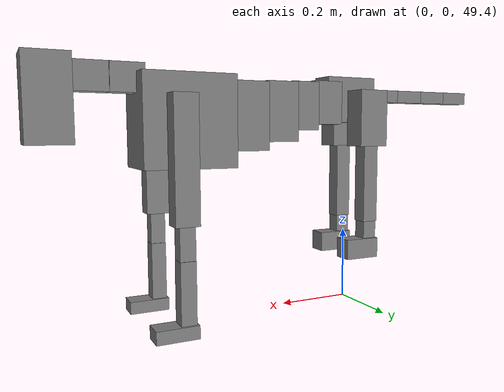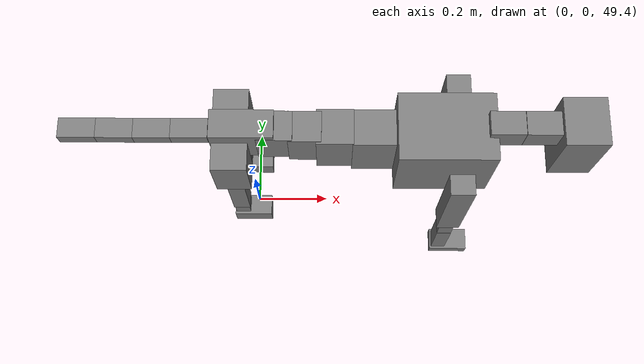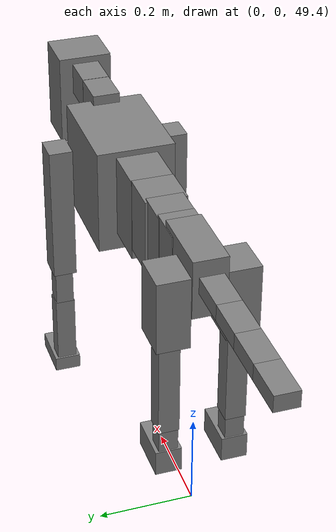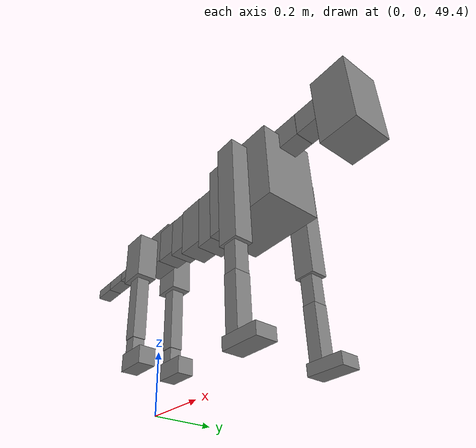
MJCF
<mujoco model="dog">

    <default>
        <joint armature="0.02" stiffness="1" damping="0.2" limited="true"/>
        <geom condim="3" friction="1 0.05 0.05" margin="0.01"/>
        <motor ctrllimited="true" ctrlrange="-1.0 1.0" forcelimited="true" gear="50"/>
    </default>

    <compiler inertiafromgeom="true" angle="radian"/>

    <option timestep="0.016" iterations="50" tolerance="1e-10" solver="Newton" jacobian="dense" cone="pyramidal"/>

    <size nconmax="20000" njmax="60000" nstack="5000000"/>
    <visual>
        <map force="0.1" zfar="30"/>
        <rgba haze="0.15 0.25 0.35 1"/>
        <quality shadowsize="2048"/>
        <global offwidth="800" offheight="800"/>
    </visual>

    <asset>
        <texture type="skybox" builtin="gradient" rgb1="0.3 0.5 0.7" rgb2="0 0 0" width="512" height="512"/>
        <texture name="texplane" type="2d" builtin="checker" rgb1=".2 .3 .4" rgb2=".1 0.15 0.2" width="512" height="512"
                 mark="cross" markrgb=".8 .8 .8"/>
        <texture name="texgeom" type="cube" builtin="flat" mark="cross" width="127" height="1278" rgb1="0.8 0.6 0.4"
                 rgb2="0.8 0.6 0.4" markrgb="1 1 1" random="0.01"/>

        <material name="matplane" reflectance="0.3" texture="texplane" texrepeat="1 1" texuniform="true"/>
        <material name="matgeom" texture="texgeom" texuniform="true" rgba="0.8 0.6 .4 1"/>
    </asset>

    <worldbody>
        <geom name="floor" pos="0 0 0" size="0 0 .25" type="plane" material="matplane" condim="3"/>

        <light directional="false" diffuse=".2 .2 .2" specular="0 0 0" pos="0 0 5" dir="0 0 -1" castshadow="false"/>
        <light mode="targetbodycom" target="torso" directional="false" diffuse=".8 .8 .8" specular="0.3 0.3 0.3"
               pos="0 0 4.0" dir="0 0 -1"/>

        <body name="root" pos="0 0 50">
            <freejoint name="root_1"/>
            <geom type="box" pos="0 0 -0.02" size="0.0774  0.0358  0.063" density="2030"/>

            <body name="spine1" pos="0.054 0 0">
                <joint name="spine1_y" axis="0 1 0" range="0 0.7" limited="true"/>
                <geom type="box" pos="0.02375 0 -0.03" size="0.04375  0.0375  0.05985" density="2030"/>

                <body name="spine2" pos="0.0612 0 0">
                    <joint name="spine2_y" axis="0 1 0" range="-0.15 0.15" limited="true"/>
                    <geom type="box" pos="0.03555  0  -0.04" size="0.04055  0.039  0.06615" density="2030"/>

                    <body name="spine3" pos="0.0730 0 0">
                        <joint name="spine3_y" axis="0 1 0" range="-0.15 0.15" limited="true"/>
                        <geom type="box" pos="0.03555  0  -0.057" size="0.04555  0.0445  0.081" density="2030"/>

                        <body name="spine4" pos="0.0780 0 0">
                            <joint name="spine4_y" axis="0 1 0" range="-0.15 0.15" limited="true"/>
                            <geom type="box" pos="0.05265  0  -0.07" size="0.05265  0.045  0.09135" density="2030"/>

                            <body name="torso" pos="0.1082 0 0">
                                <joint name="torso_y" axis="0 1 0" range="-0.15 0.15" limited="true"/>
                                <geom type="box" pos="0.11925  0  -0.085" size="0.11925  0.085  0.11745"
                                      density="2030"/>

                                <body name="neck1" pos="0.2160  0   0.0180">
                                    <joint name="neck1_y" axis="0 1 0" range="-1.2  -1" limited="true"/>
                                    <geom type="box" pos="0.0423  0  0" size="0.0423  0.03  0.036" density="2325"/>

                                    <body name="neck2" pos="0.0853  0  0">
                                        <joint name="neck2_y" axis="0 1 0" range="0.1  0" limited="true"/>
                                        <geom type="box" pos="0.0423  0  0" size="0.0423  0.03  0.036" density="2325"/>

                                        <body name="head" pos="0.0853  0  0">
                                            <joint name="head_y" axis="0 1 0" range="-0.3  -0.2" limited="true"/>
                                            <geom type="box" pos="0.0531  0  -0.055" size="0.0531  0.06  0.1044"
                                                  density="4030"/>

                                        </body>
                                    </body>
                                </body>

                                <body name="front_shoulder" pos="0.156  0   -0.0480">
                                    <joint name="front_shoulder_y" axis="0 1 0" range="-1 1.5" limited="true"/>
                                    <geom type="box" pos="0 0.13 -0.1290" size="0.0303  0.0259  0.1556" density="1158"/>
                                    <geom type="box" pos="0 -0.13 -0.1290" size="0.0303  0.0259  0.1556"
                                          density="1158"/>

                                    <body name="front_elbow" pos="0  0  -0.2579">
                                        <joint name="front_elbow_y" axis="0 1 0" range="-2 0" limited="true"/>
                                        <geom type="box" pos="0 0.13 -0.0609" size="0.0195  0.0199  0.0609"
                                              density="1081"/>
                                        <geom type="box" pos="0 -0.13 -0.0609" size="0.0195  0.0199  0.0609"
                                              density="1081"/>

                                        <body name="front_wrist" pos="0  0  -0.1219">
                                            <joint name="front_wrist_y" axis="0 1 0" range="-0.2 0" limited="true"/>
                                            <geom type="box" pos="0 0.13 -0.0784" size="0.0196  0.0218  0.0915"
                                                  density="1664"/>
                                            <geom type="box" pos="0 -0.13 -0.0784" size="0.0196  0.0218  0.0915"
                                                  density="1664"/>

                                            <body name="front_finger_end" pos="0  0  -0.1567">
                                                <joint name="front_finger_y" axis="0 1 0" range="-0.4 1"
                                                       limited="true"/>
                                                <geom type="box" pos="0.0290  0.13  -0.0016"
                                                      size="0.0532  0.0290  0.0166" density="1515"/>
                                                <geom type="box" pos="0.0290  -0.13  -0.0016"
                                                      size="0.0532  0.0290  0.0166" density="1515"/>

                                            </body>

                                        </body>
                                    </body>
                                </body>

                            </body>
                        </body>
                    </body>
                </body>
            </body>

            <body name="back_hip" pos="-0.03 0 -0.018">
                <joint name="back_hip_y" axis="0 1 0" range="-1.5 0.3" limited="true"/>
                <geom type="box" pos="0 0.07 -0.0553" size="0.0436  0.0342  0.0781" density="1154"/>
                <geom type="box" pos="0 -0.07 -0.0553" size="0.0436  0.0342  0.0781" density="1154"/>

                <body name="back_knee" pos="0  0  -0.1107">
                    <joint name="back_knee_y" axis="0 1 0" range="0 2.8" limited="true"/>
                    <geom type="box" pos="0 0.07 -0.1105" size="0.0222  0.0218  0.1261" density="1227"/>
                    <geom type="box" pos="0 -0.07 -0.1105" size="0.0222  0.0218  0.1261" density="1227"/>

                    <body name="back_ankle" pos="0  0  -0.2211">
                        <joint name="back_ankle_y" axis="0 1 0" range="-2.2 0" limited="true"/>
                        <geom type="box" pos="0 0.07 -0.0395" size="0.0200  0.0200  0.0507" density="1284"/>
                        <geom type="box" pos="0 -0.07 -0.0395" size="0.0200  0.0200  0.0507" density="1284"/>

                        <body name="back_toe_end" pos="0  0  -0.0789">
                            <joint name="back_toe_y" axis="0 1 0" range="-0.4 1" limited="true"/>
                            <geom type="box" pos="0.0275  0.07  -0.0128" size="0.0505  0.0275  0.0278" density="1515"/>
                            <geom type="box" pos="0.0275  -0.07  -0.0128" size="0.0505  0.0275  0.0278" density="1515"/>

                        </body>
                    </body>
                </body>
            </body>

            <body name="tail1" pos="-0.074 0 -0.006">
                <joint name="tail1_y" axis="0 1 0" range="-0.2 0.2" limited="true"/>
                <geom type="box" pos="-0.0536  0  0" size="0.045  0.025  0.0175" density="1587"/>

                <body name="tail2" pos="-0.09 0 0">
                    <joint name="tail2_y" axis="0 1 0" range="-0.2 0.2" limited="true"/>
                    <geom type="box" pos="-0.0536  0  0" size="0.045  0.025  0.0175" density="1587"/>

                    <body name="tail3" pos="-0.09 0 0">
                        <joint name="tail3_y" axis="0 1 0" range="-0.2 0.2" limited="true"/>
                        <geom type="box" pos="-0.0536  0  0" size="0.045  0.025  0.0175" density="1587"/>

                        <body name="tail4" pos="-0.09 0 0">
                            <joint name="tail4_y" axis="0 1 0" range="-0.2 0.2" limited="true"/>
                            <geom type="box" pos="-0.0536  0  0" size="0.045  0.025  0.0175" density="1587"/>

                        </body>
                    </body>
                </body>
            </body>
        </body>
    </worldbody>

    <actuator>
        <motor joint="spine1_y" forcerange="-150 150     "/>
        <motor joint="spine2_y" forcerange="-150 150     "/>
        <motor joint="spine3_y" forcerange="-150 150     "/>
        <motor joint="spine4_y" forcerange="-150 150     "/>
        <motor joint="torso_y" forcerange="-150 150     "/>
        <motor joint="neck1_y" forcerange="-100 100       "/>
        <motor joint="neck2_y" forcerange="-100 100       "/>
        <motor joint="head_y" forcerange="-150 150       "/>
        <motor joint="front_shoulder_y" forcerange="-102.07 170.55"/>
        <motor joint="front_elbow_y" forcerange="-115.38 129.68"/>
        <motor joint="front_wrist_y" forcerange="-107.58 66.80"/>
        <motor joint="front_finger_y" forcerange="-65.23 49.43"/>
        <motor joint="back_hip_y" forcerange="-301.05 355.09"/>
        <motor joint="back_knee_y" forcerange="-266.23 251.55"/>
        <motor joint="back_angle_y" forcerange="-154.36 66.36"/>
        <motor joint="back_toe_y" forcerange="-36.06 104.16"/>
        <motor joint="tail1_y" forcerange="-50 50     "/>
        <motor joint="tail2_y" forcerange="-50 50     "/>
        <motor joint="tail3_y" forcerange="-50 50     "/>
        <motor joint="tail4_y" forcerange="-50 50     "/>
    </actuator>
</mujoco>
